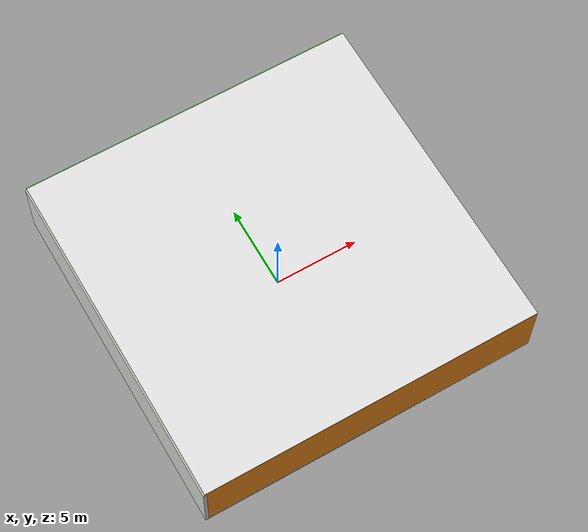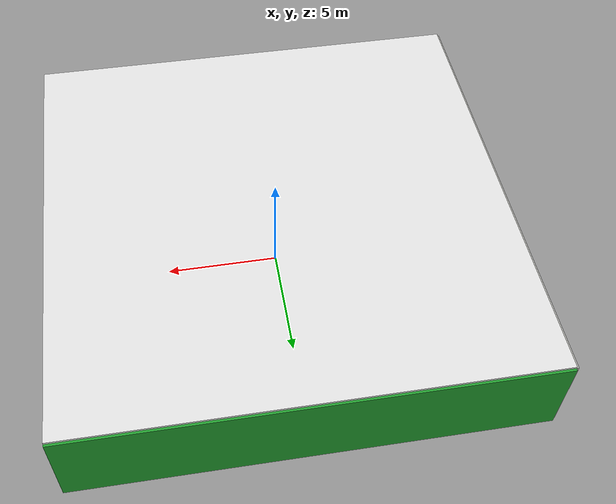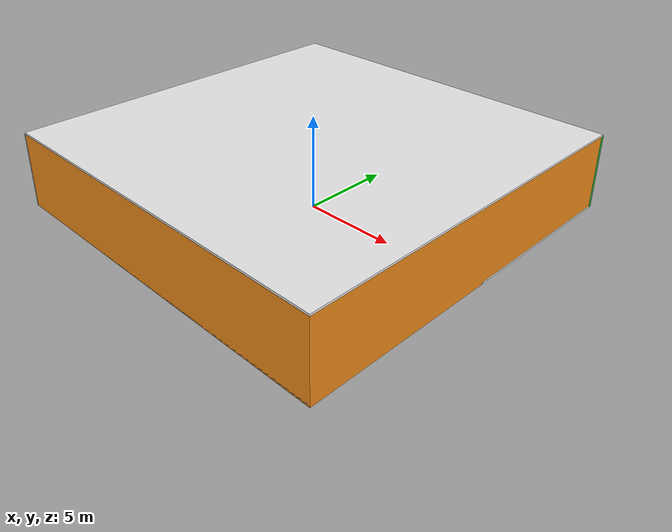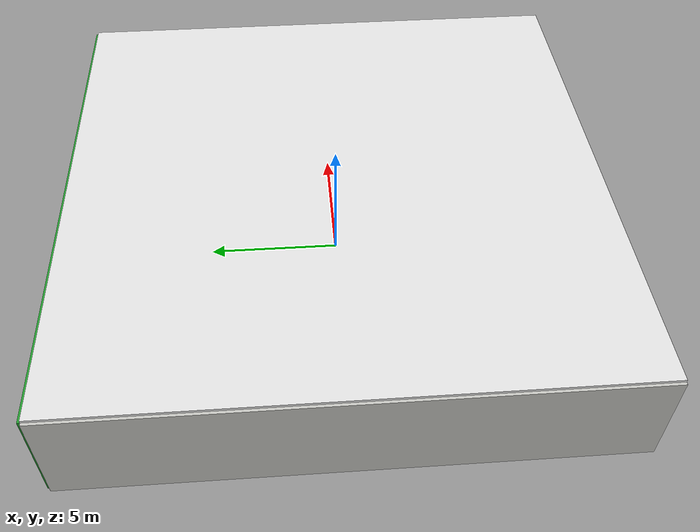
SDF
<sdf version="1.4">
 <world name="default">
  <physics type="ode">
   <max_step_size>0.001</max_step_size>
   <real_time_factor>1</real_time_factor>
   <real_time_update_rate>1000</real_time_update_rate>
   <gravity>0 0 -9.8</gravity>
  </physics>
  <scene><ambient>0.4 0.4 0.4 1</ambient><background>0.7 0.7 0.7 1</background><shadows>1</shadows></scene>
  <model name="Surrounding">
   <static>1</static>
   <link name="Ceiling">
    <collision name="Ceiling_Collision"><geometry><box><size>20 20 0.1</size></box></geometry></collision>
    <visual name="Ceiling_Visual">
     <geometry><box><size>20 20 0.1</size></box></geometry>
     <material>
      <script><uri>file://media/materials/scripts/gazebo.material</uri><name>Gazebo/WhiteGlow</name></script>
     </material>
    </visual>
    <pose>0 0 4.05 0 0 0</pose>
   </link>
   <link name="Wall_South">
    <collision name="Wall_South_Collision">
     <geometry><box><size>20 0 4</size></box></geometry>
     <pose>0 0 2 0 -0 0</pose>
    </collision>
    <visual name="Wall_South_Visual">
     <pose>0 0 2 0 -0 0</pose>
     <geometry><box><size>20 0 4</size></box></geometry>
     <material>
      <script><uri>file://media/materials/scripts/gazebo.material</uri><name>Gazebo/Orange</name></script>
     </material>
    </visual>
    <velocity_decay><linear>0</linear><angular>0</angular></velocity_decay>
    <pose>0 -10 0 0 -0 0</pose>
   </link>
   <link name="Wall_East">
    <collision name="Wall_21_Collision">
     <geometry><box><size>20 0 4</size></box></geometry>
     <pose>0 0 2 0 -0 0</pose>
    </collision>
    <visual name="Wall_21_Visual">
     <pose>0 0 2 0 -0 0</pose>
     <geometry><box><size>20 0 4</size></box></geometry>
     <material>
      <script><uri>file://media/materials/scripts/gazebo.material</uri><name>Gazebo/Orange</name></script>
     </material>
    </visual>
    <velocity_decay><linear>0</linear><angular>0</angular></velocity_decay>
    <pose>10 0 0 0 -0 1.5708</pose>
   </link>
   <link name="Wall_North">
    <collision name="Wall_22_Collision">
     <geometry><box><size>20 0.2 4</size></box></geometry>
     <pose>0 0 2 0 -0 0</pose>
    </collision>
    <visual name="Wall_22_Visual">
     <pose>0 0 2 0 -0 0</pose>
     <geometry><box><size>20 0.2 4</size></box></geometry>
     <material>
      <script><uri>file://media/materials/scripts/gazebo.material</uri><name>Gazebo/Green</name></script>
     </material>
    </visual>
    <velocity_decay><linear>0</linear><angular>0</angular></velocity_decay>
    <pose>0 10 0 0 -0 0</pose>
   </link>
   <link name="Wall_West">
    <collision name="Wall_23_Collision">
     <geometry><box><size>20 0.2 4</size></box></geometry>
     <pose>0 0 2 0 -0 0</pose>
    </collision>
    <visual name="Wall_23_Visual">
     <pose>0 0 2 0 -0 0</pose>
     <geometry><box><size>20 0.2 4</size></box></geometry>
     <material>
      <script><uri>file://media/materials/scripts/gazebo.material</uri><name>Gazebo/CeilingTiled</name></script>
     </material>
    </visual>
    <velocity_decay><linear>0</linear><angular>0</angular></velocity_decay>
    <pose>-10 0 0 0 0 -1.5708</pose>
   </link>
   <link name="Ground_link">
    <collision name="collision">
     <pose>0 0 .05 0 -0 0</pose>
     <geometry><box><size>20 20 0.1</size></box></geometry>
    </collision>
    <visual name="visual">
     <pose>0 0 .05 0 -0 0</pose>
     <geometry><box><size>20 20 0.1</size></box></geometry>
     <material>
      <script><uri>file://media/materials/scripts/gazebo.material</uri><name>Gazebo/WhiteGlow</name></script>
     </material>
    </visual>
   </link>
   <static>1</static>
  </model>
  <spherical_coordinates>
   <surface_model>EARTH_WGS84</surface_model>
   <latitude_deg>0</latitude_deg>
   <longitude_deg>0</longitude_deg>
   <elevation>0</elevation>
   <heading_deg>0</heading_deg>
  </spherical_coordinates>
  <light name="lightball_0" type="diffuse">
   <diffuse>0.8 0.8 0.8 1</diffuse>
   <specular>0.2 0.2 0.2 1</specular>
   <attenuation>
    <range>100</range>
    <constant>0.7</constant>
    <linear>0.01</linear>
    <quadratic>0.001</quadratic>
   </attenuation>
   <direction>-0.5 0.1 -0.9</direction>
   <pose>-8.92638635972 7.29029710337 2.04926447583 0 0 0</pose>
  </light>
  <light name="lightball_1" type="diffuse">
   <diffuse>0.8 0.8 0.8 1</diffuse>
   <specular>0.2 0.2 0.2 1</specular>
   <attenuation>
    <range>100</range>
    <constant>0.7</constant>
    <linear>0.01</linear>
    <quadratic>0.001</quadratic>
   </attenuation>
   <direction>-0.5 0.1 -0.9</direction>
   <pose>9.22660124298 -6.47389390408 2.23041123739 0 0 0</pose>
  </light>
  <light name="lightball_2" type="diffuse">
   <diffuse>0.8 0.8 0.8 1</diffuse>
   <specular>0.2 0.2 0.2 1</specular>
   <attenuation>
    <range>100</range>
    <constant>0.7</constant>
    <linear>0.01</linear>
    <quadratic>0.001</quadratic>
   </attenuation>
   <direction>-0.5 0.1 -0.9</direction>
   <pose>9.93984465876 3.42295288863 3.52633269115 0 0 0</pose>
  </light>
  <light name="lightball_3" type="diffuse">
   <diffuse>0.8 0.8 0.8 1</diffuse>
   <specular>0.2 0.2 0.2 1</specular>
   <attenuation>
    <range>100</range>
    <constant>0.7</constant>
    <linear>0.01</linear>
    <quadratic>0.001</quadratic>
   </attenuation>
   <direction>-0.5 0.1 -0.9</direction>
   <pose>9.9842247034 4.72958658691 2.89487913818 0 0 0</pose>
  </light>
  <light name="lightball_4" type="diffuse">
   <diffuse>0.8 0.8 0.8 1</diffuse>
   <specular>0.2 0.2 0.2 1</specular>
   <attenuation>
    <range>100</range>
    <constant>0.7</constant>
    <linear>0.01</linear>
    <quadratic>0.001</quadratic>
   </attenuation>
   <direction>-0.5 0.1 -0.9</direction>
   <pose>6.78479049603 -0.929665853894 3.1375832115 0 0 0</pose>
  </light>
  <include>
   <uri>model://textured_shapes</uri>
   <pose>-7.07617295593 7.12423097029 0 0 0 1.80826357151</pose>
  </include>
  <include>
   <uri>model://robocup_3Dsim_goal</uri>
   <pose>-4.47032974676 1.85396689263 0 0 0 2.09370979047</pose>
  </include>
  <include>
   <uri>model://robocup_3Dsim_goal</uri>
   <pose>-4.955011143 4.5334894391 0 0 0 2.73680148442</pose>
  </include>
  <include><uri>model://cabinet</uri><pose>-1.47571300937 1.90951079097 0 0 0 2.11877474258</pose></include>
  <include>
   <uri>model://textured_shapes</uri>
   <pose>-0.940601938195 7.2935461317 0 0 0 2.44825695565</pose>
  </include>
  <include><uri>model://table</uri><pose>1.70901752429 -1.61866874476 0 0 0 1.59474504005</pose></include>
  <include><uri>model://cabinet</uri><pose>4.73633007356 4.97811750752 0 0 0 1.82834993219</pose></include>
  <include><uri>model://cabinet</uri><pose>8.05060010611 4.1159001008 0 0 0 2.2988680974</pose></include>
 </world>
</sdf>

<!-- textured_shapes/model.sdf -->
<sdf version="1.6">
  <model name="textured_shapes">
    <pose>0 0 0.5 0 0 0</pose>
    <link name="box">
      <pose>0 -1.5 0 0 0 0</pose>
      <collision name="collision">
        <geometry>
          <box>
            <size>1 1 1</size>
          </box>
        </geometry>
      </collision>
      <visual name="visual">
        <geometry>
          <box>
            <size>1 1 1</size>
          </box>
        </geometry>
        <material>
          <script>
            <uri>model://../model_source/models/textured_shapes/materials/scripts</uri>
            <uri>model://../model_source/models/textured_shapes/materials/textures</uri>
            <name>TexturedShape/Squares</name>
          </script>
        </material>
      </visual>
    </link>
    <link name="sphere">
      <collision name="collision">
        <geometry>
          <sphere>
            <radius>0.5</radius>
          </sphere>
        </geometry>
      </collision>
      <visual name="visual">
        <geometry>
          <sphere>
            <radius>0.5</radius>
          </sphere>
        </geometry>
        <material>
          <script>
            <uri>model://../model_source/models/textured_shapes/materials/scripts</uri>
            <uri>model://../model_source/models/textured_shapes/materials/textures</uri>
            <name>TexturedShape/Squares</name>
          </script>
        </material>
      </visual>
    </link>
    <link name="cylinder">
      <pose>0 1.5 0 0 0 0</pose>
      <collision name="collision">
        <geometry>
          <cylinder>
            <radius>0.5</radius>
            <length>1</length>
          </cylinder>
        </geometry>
      </collision>
      <visual name="visual">
        <geometry>
          <cylinder>
            <radius>0.5</radius>
            <length>1</length>
          </cylinder>
        </geometry>
        <material>
          <script>
            <uri>model://../model_source/models/textured_shapes/materials/scripts</uri>
            <uri>model://../model_source/models/textured_shapes/materials/textures</uri>
            <name>TexturedShape/Squares</name>
          </script>
        </material>
      </visual>
    </link>
  </model>
</sdf>

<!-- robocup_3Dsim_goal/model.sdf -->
<sdf version="1.5">
  <model name="robocup_3d_goal">
    <static>true</static>
    <link name="left_post">
      <pose>0 1.05 0.45 0 0 0</pose>
      <collision name="collision">
        <geometry>
          <cylinder>
            <radius>0.05</radius>
            <length>0.9</length>
          </cylinder>
        </geometry>
      </collision>
      <visual name="visual">
        <geometry>
          <cylinder>
            <radius>0.05</radius>
            <length>0.9</length>
          </cylinder>
        </geometry>
        <material>
          <script>
            <uri>file://media/materials/scripts/gazebo.material</uri>
            <name>Gazebo/ZincYellow</name>
          </script>
        </material>
      </visual>
    </link>
    <link name="left_support_horiz_lower">
      <pose>0.30 1.05 0.01 0 0 0</pose>
      <collision name="collision">
        <geometry>
          <box>
            <size>0.50 0.02 0.02</size>
          </box>
        </geometry>
      </collision>
      <visual name="visual">
        <geometry>
          <box>
            <size>0.50 0.02 0.02</size>
          </box>
        </geometry>
        <material>
          <script>
            <uri>file://media/materials/scripts/gazebo.material</uri>
            <name>Gazebo/White</name>
          </script>
        </material>
      </visual>
    </link>
    <link name="left_support_horiz_upper">
      <pose>0.30 1.05 0.79 0 0 0</pose>
      <collision name="collision">
        <geometry>
          <box>
            <size>0.50 0.02 0.02</size>
          </box>
        </geometry>
      </collision>
      <visual name="visual">
        <geometry>
          <box>
            <size>0.50 0.02 0.02</size>
          </box>
        </geometry>
        <material>
          <script>
            <uri>file://media/materials/scripts/gazebo.material</uri>
            <name>Gazebo/White</name>
          </script>
        </material>
      </visual>
    </link>
    <link name="left_support_vertical">
      <pose>0.56 1.05 0.4 0 1.5708 0</pose>
      <collision name="collision">
        <geometry>
          <box>
            <size>0.80 0.02 0.02</size>
          </box>
        </geometry>
      </collision>
      <visual name="visual">
        <geometry>
          <box>
            <size>0.80 0.02 0.02</size>
          </box>
        </geometry>
        <material>
          <script>
            <uri>file://media/materials/scripts/gazebo.material</uri>
            <name>Gazebo/White</name>
          </script>
        </material>
      </visual>
    </link>
    <link name="right_support_horiz_lower">
      <pose>0.30 -1.05 0.01 0 0 0</pose>
      <collision name="collision">
        <geometry>
          <box>
            <size>0.50 0.02 0.02</size>
          </box>
        </geometry>
      </collision>
      <visual name="visual">
        <geometry>
          <box>
            <size>0.50 0.02 0.02</size>
          </box>
        </geometry>
        <material>
          <script>
            <uri>file://media/materials/scripts/gazebo.material</uri>
            <name>Gazebo/White</name>
          </script>
        </material>
      </visual>
    </link>
    <link name="right_support_horiz_upper">
      <pose>0.30 -1.05 0.79 0 0 0</pose>
      <collision name="collision">
        <geometry>
          <box>
            <size>0.50 0.02 0.02</size>
          </box>
        </geometry>
      </collision>
      <visual name="visual">
        <geometry>
          <box>
            <size>0.50 0.02 0.02</size>
          </box>
        </geometry>
        <material>
          <script>
            <uri>file://media/materials/scripts/gazebo.material</uri>
            <name>Gazebo/White</name>
          </script>
        </material>
      </visual>
    </link>
    <link name="right_support_vertical">
      <pose>0.56 -1.05 0.4 0 1.5708 0</pose>
      <collision name="collision">
        <geometry>
          <box>
            <size>0.80 0.02 0.02</size>
          </box>
        </geometry>
      </collision>
      <visual name="visual">
        <geometry>
          <box>
            <size>0.80 0.02 0.02</size>
          </box>
        </geometry>
        <material>
          <script>
            <uri>file://media/materials/scripts/gazebo.material</uri>
            <name>Gazebo/White</name>
          </script>
        </material>
      </visual>
    </link>
    <link name="center_support_horiz_lower">
      <pose>0.56 0 0.01 0 1.5708 0</pose>
      <collision name="collision">
        <geometry>
          <box>
            <size>0.02 2.08 0.02</size>
          </box>
        </geometry>
      </collision>
      <visual name="visual">
        <geometry>
          <box>
            <size>0.02 2.08 0.02</size>
          </box>
        </geometry>
        <material>
          <script>
            <uri>file://media/materials/scripts/gazebo.material</uri>
            <name>Gazebo/White</name>
          </script>
        </material>
      </visual>
    </link>
    <link name="center_support_horiz_upper">
      <pose>0.56 0 0.79 0 1.5708 0</pose>
      <collision name="collision">
        <geometry>
          <box>
            <size>0.02 2.08 0.02</size>
          </box>
        </geometry>
      </collision>
      <visual name="visual">
        <geometry>
          <box>
            <size>0.02 2.08 0.02</size>
          </box>
        </geometry>
        <material>
          <script>
            <uri>file://media/materials/scripts/gazebo.material</uri>
            <name>Gazebo/White</name>
          </script>
        </material>
      </visual>
    </link>
    <link name="right_post">
      <pose>0 -1.05 0.45 0 0 0</pose>
      <collision name="collision">
        <geometry>
          <cylinder>
            <radius>0.05</radius>
            <length>0.9</length>
          </cylinder>
        </geometry>
      </collision>
      <visual name="visual">
        <geometry>
          <cylinder>
            <radius>0.05</radius>
            <length>0.9</length>
          </cylinder>
        </geometry>
        <material>
          <script>
            <uri>file://media/materials/scripts/gazebo.material</uri>
            <name>Gazebo/ZincYellow</name>
          </script>
        </material>
      </visual>
    </link>
    <link name="crossbar">
      <pose>0 0 0.85 1.57 1.57 0</pose>
      <collision name="collision">
        <geometry>
          <cylinder>
            <radius>0.05</radius>
            <length>2.0</length>
          </cylinder>
        </geometry>
      </collision>
      <visual name="visual">
        <geometry>
          <cylinder>
            <radius>0.05</radius>
            <length>2.0</length>
          </cylinder>
        </geometry>
        <material>
          <script>
            <uri>file://media/materials/scripts/gazebo.material</uri>
            <name>Gazebo/ZincYellow</name>
          </script>
        </material>
      </visual>
    </link>
    <link name="center_net">
      <pose>0.56 0 0.40 0 0 0</pose>
      <collision name="collision">
        <geometry>
          <box>
            <size>0.01 2.1 0.80</size>
          </box>
        </geometry>
      </collision>
      <visual name="visual">
        <geometry>
          <box>
            <size>0.01 2.1 0.80</size>
          </box>
        </geometry>
        <material>
          <script>
            <uri>model://../model_source/models/robocup09_spl_field/materials/scripts/</uri>
            <uri>model://../model_source/models/robocup09_spl_field/materials/textures/</uri>
            <name>RoboCup/Net</name>
          </script>
        </material>
      </visual>
    </link>
    <link name="left_net">
      <pose>0.30 1.05 0.40 0 0 0</pose>
      <collision name="collision">
        <geometry>
          <box>
            <size>0.50 0.01 0.76</size>
          </box>
        </geometry>
      </collision>
      <visual name="visual">
        <geometry>
          <box>
            <size>0.50 0.01 0.76</size>
          </box>
        </geometry>
        <material>
          <script>
            <uri>model://../model_source/models/robocup09_spl_field/materials/scripts/</uri>
            <uri>model://../model_source/models/robocup09_spl_field/materials/textures/</uri>
            <name>RoboCup/Net</name>
          </script>
        </material>
      </visual>
    </link>
    <link name="right_net">
      <pose>0.30 -1.05 0.40 0 0 0</pose>
      <collision name="collision">
        <geometry>
          <box>
            <size>0.50 0.01 0.76</size>
          </box>
        </geometry>
      </collision>
      <visual name="visual">
        <geometry>
          <box>
            <size>0.50 0.01 0.76</size>
          </box>
        </geometry>
        <material>
          <script>
            <uri>model://../model_source/models/robocup09_spl_field/materials/scripts/</uri>
            <uri>model://../model_source/models/robocup09_spl_field/materials/textures/</uri>
            <name>RoboCup/Net</name>
          </script>
        </material>
      </visual>
    </link>
  </model>
</sdf>

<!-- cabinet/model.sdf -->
<sdf version="1.5">
  <model name="cabinet">
    <static>true</static>
    <link name="cabinet_bottom_plate">
      <inertial>
        <pose>0 0 -1 0 0 0</pose>
        <inertia>
          <ixx>2.050000</ixx>
          <ixy>0</ixy>
          <ixz>0</ixz>
          <iyy>2.050000</iyy>
          <iyz>0</iyz>
          <izz>2.050000</izz>
        </inertia>
        <mass>25.000000</mass>
      </inertial>
      <collision name="cabinet_bottom_plate_geom">
        <pose>0 0 0.010000 0 0 0</pose>
        <geometry>
          <box>
            <size>0.450000 0.450000 0.020000</size>
          </box>
        </geometry>
      </collision>
      <visual name="cabinet_bottom_plate_geom_visual">
        <pose>0 0 0.010000 0 0 0</pose>
        <geometry>
          <box>
            <size>0.450000 0.450000 0.020000</size>
          </box>
        </geometry>
        <material>
          <script>
            <uri>model://media/materials/scripts/gazebo.material</uri>
            <name>Gazebo/Wood</name>
          </script>
        </material>
      </visual>
      <collision name="cabinet_bottom_plate_geom_cabinet_back_plate">
        <pose>0.235000 0 0.510000 0 0 0</pose>
        <geometry>
          <box>
            <size>0.020000 0.450000 1.020000</size>
          </box>
        </geometry>
      </collision>
      <visual name="cabinet_bottom_plate_geom_cabinet_back_plate_visual">
        <pose>0.235000 0 0.510000 0 0 0</pose>
        <geometry>
          <box>
            <size>0.020000 0.450000 1.020000</size>
          </box>
        </geometry>
        <material>
          <script>
            <uri>model://media/materials/scripts/gazebo.material</uri>
            <name>Gazebo/Wood</name>
          </script>
        </material>
      </visual>
      <collision name="cabinet_bottom_plate_geom_cabinet_left_plate">
        <pose>0 0.235000 0.510000 0 0 0</pose>
        <geometry>
          <box>
            <size>0.450000 0.020000 1.020000</size>
          </box>
        </geometry>
      </collision>
      <visual name="cabinet_bottom_plate_geom_cabinet_left_plate_visual">
        <pose>0 0.235000 0.510000 0 0 0</pose>
        <geometry>
          <box>
            <size>0.450000 0.020000 1.020000</size>
          </box>
        </geometry>
        <material>
          <script>
            <uri>model://media/materials/scripts/gazebo.material</uri>
            <name>Gazebo/Wood</name>
          </script>
        </material>
      </visual>
      <collision name="cabinet_bottom_plate_geom_cabinet_middle_plate">
        <pose>0 0 0.510000 0 0 0</pose>
        <geometry>
          <box>
            <size>0.450000 0.450000 0.020000</size>
          </box>
        </geometry>
      </collision>
      <visual name="cabinet_bottom_plate_geom_cabinet_middle_plate_visual">
        <pose>0 0 0.510000 0 0 0</pose>
        <geometry>
          <box>
            <size>0.450000 0.450000 0.020000</size>
          </box>
        </geometry>
        <material>
          <script>
            <uri>model://media/materials/scripts/gazebo.material</uri>
            <name>Gazebo/Wood</name>
          </script>
        </material>
      </visual>
      <collision name="cabinet_bottom_plate_geom_cabinet_right_plate">
        <pose>0 -0.235000 0.510000 0 0 0</pose>
        <geometry>
          <box>
            <size>0.450000 0.020000 1.020000</size>
          </box>
        </geometry>
      </collision>
      <visual name="cabinet_bottom_plate_geom_cabinet_right_plate_visual">
        <pose>0 -0.235000 0.510000 0 0 0</pose>
        <geometry>
          <box>
            <size>0.450000 0.020000 1.020000</size>
          </box>
        </geometry>
        <material>
          <script>
            <uri>model://media/materials/scripts/gazebo.material</uri>
            <name>Gazebo/Wood</name>
          </script>
        </material>
      </visual>
      <collision name="cabinet_bottom_plate_geom_cabinet_top_plate">
        <pose>0 0 1.010000 0 0 0</pose>
        <geometry>
          <box>
            <size>0.450000 0.450000 0.020000</size>
          </box>
        </geometry>
      </collision>
      <visual name="cabinet_bottom_plate_geom_cabinet_top_plate_visual">
        <pose>0 0 1.010000 0 0 0</pose>
        <geometry>
          <box>
            <size>0.450000 0.450000 0.020000</size>
          </box>
        </geometry>
        <material>
          <script>
            <uri>model://media/materials/scripts/gazebo.material</uri>
            <name>Gazebo/Wood</name>
          </script>
        </material>
      </visual>
    </link>
  </model>
</sdf>

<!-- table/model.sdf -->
<sdf version="1.5">
  <model name="table">
    <static>true</static>
    <link name="link">
      <collision name="surface">
        <pose>0 0 1.0 0 0 0</pose>
        <geometry>
          <box>
            <size>1.5 0.8 0.03</size>
          </box>
        </geometry>
        <surface>
          <friction>
            <ode>
              <mu>0.6</mu>
              <mu2>0.6</mu2>
            </ode>
          </friction>
        </surface>
      </collision>
      <visual name="visual1">
        <pose>0 0 1.0 0 0 0</pose>
        <geometry>
          <box>
            <size>1.5 0.8 0.03</size>
          </box>
        </geometry>
        <material>
          <script>
            <uri>model://media/materials/scripts/gazebo.material</uri>
            <name>Gazebo/Wood</name>
          </script>
        </material>
      </visual>
      <collision name="front_left_leg">
        <pose>0.68 0.38 0.5 0 0 0</pose>
        <geometry>
          <cylinder>
            <radius>0.02</radius>
            <length>1.0</length>
          </cylinder>
        </geometry>
      </collision>
      <visual name="front_left_leg">
        <pose>0.68 0.38 0.5 0 0 0</pose>
        <geometry>
          <cylinder>
            <radius>0.02</radius>
            <length>1.0</length>
          </cylinder>
        </geometry>
        <material>
          <script>
            <uri>model://media/materials/scripts/gazebo.material</uri>
            <name>Gazebo/Grey</name>
          </script>
        </material>
      </visual>
      <collision name="front_right_leg">
        <pose>0.68 -0.38 0.5 0 0 0</pose>
        <geometry>
          <cylinder>
            <radius>0.02</radius>
            <length>1.0</length>
          </cylinder>
        </geometry>
      </collision>
      <visual name="front_right_leg">
        <pose>0.68 -0.38 0.5 0 0 0</pose>
        <geometry>
          <cylinder>
            <radius>0.02</radius>
            <length>1.0</length>
          </cylinder>
        </geometry>
        <material>
          <script>
            <uri>model://media/materials/scripts/gazebo.material</uri>
            <name>Gazebo/Grey</name>
          </script>
        </material>
      </visual>
      <collision name="back_right_leg">
        <pose>-0.68 -0.38 0.5 0 0 0</pose>
        <geometry>
          <cylinder>
            <radius>0.02</radius>
            <length>1.0</length>
          </cylinder>
        </geometry>
      </collision>
      <visual name="back_right_leg">
        <pose>-0.68 -0.38 0.5 0 0 0</pose>
        <geometry>
          <cylinder>
            <radius>0.02</radius>
            <length>1.0</length>
          </cylinder>
        </geometry>
        <material>
          <script>
            <uri>model://media/materials/scripts/gazebo.material</uri>
            <name>Gazebo/Grey</name>
          </script>
        </material>
      </visual>
      <collision name="back_left_leg">
        <pose>-0.68 0.38 0.5 0 0 0</pose>
        <geometry>
          <cylinder>
            <radius>0.02</radius>
            <length>1.0</length>
          </cylinder>
        </geometry>
      </collision>
      <visual name="back_left_leg">
        <pose>-0.68 0.38 0.5 0 0 0</pose>
        <geometry>
          <cylinder>
            <radius>0.02</radius>
            <length>1.0</length>
          </cylinder>
        </geometry>
        <material>
          <script>
            <uri>model://media/materials/scripts/gazebo.material</uri>
            <name>Gazebo/Grey</name>
          </script>
        </material>
      </visual>
    </link>
  </model>
</sdf>
